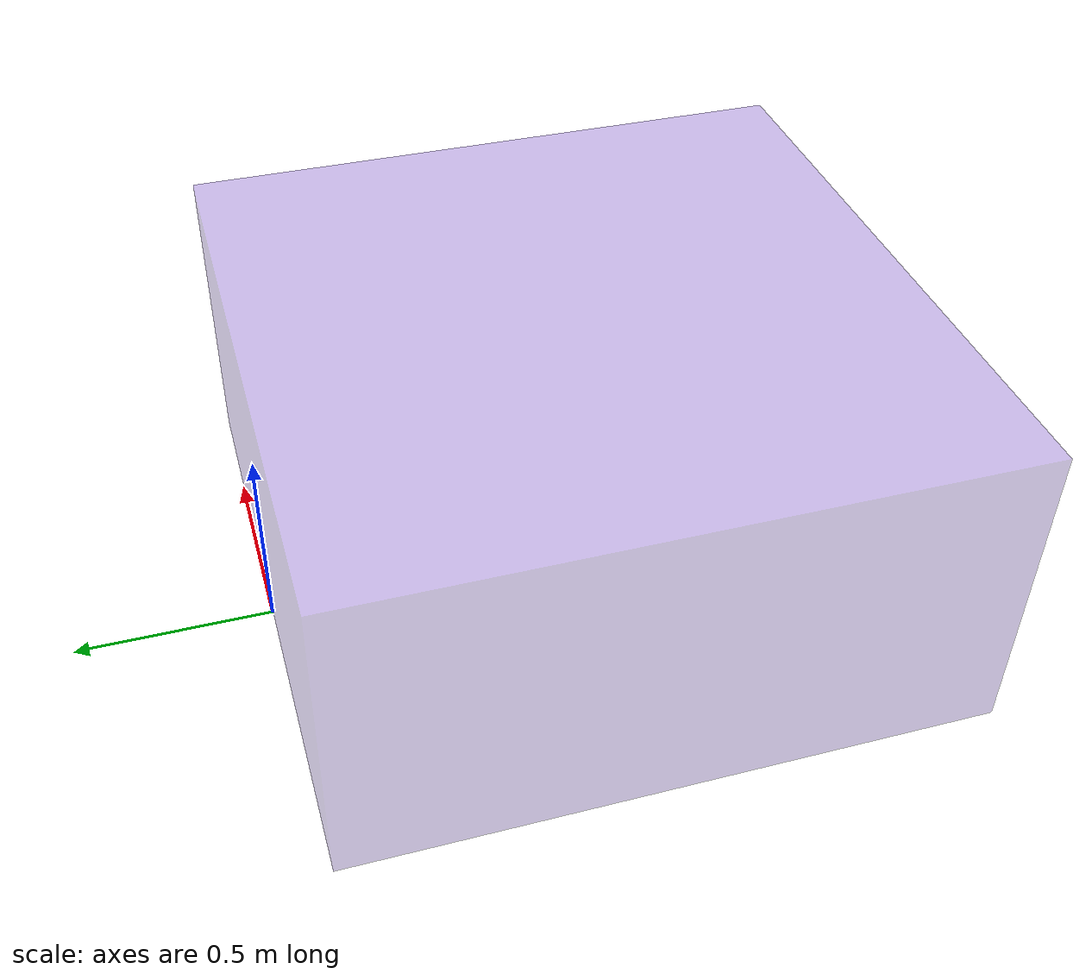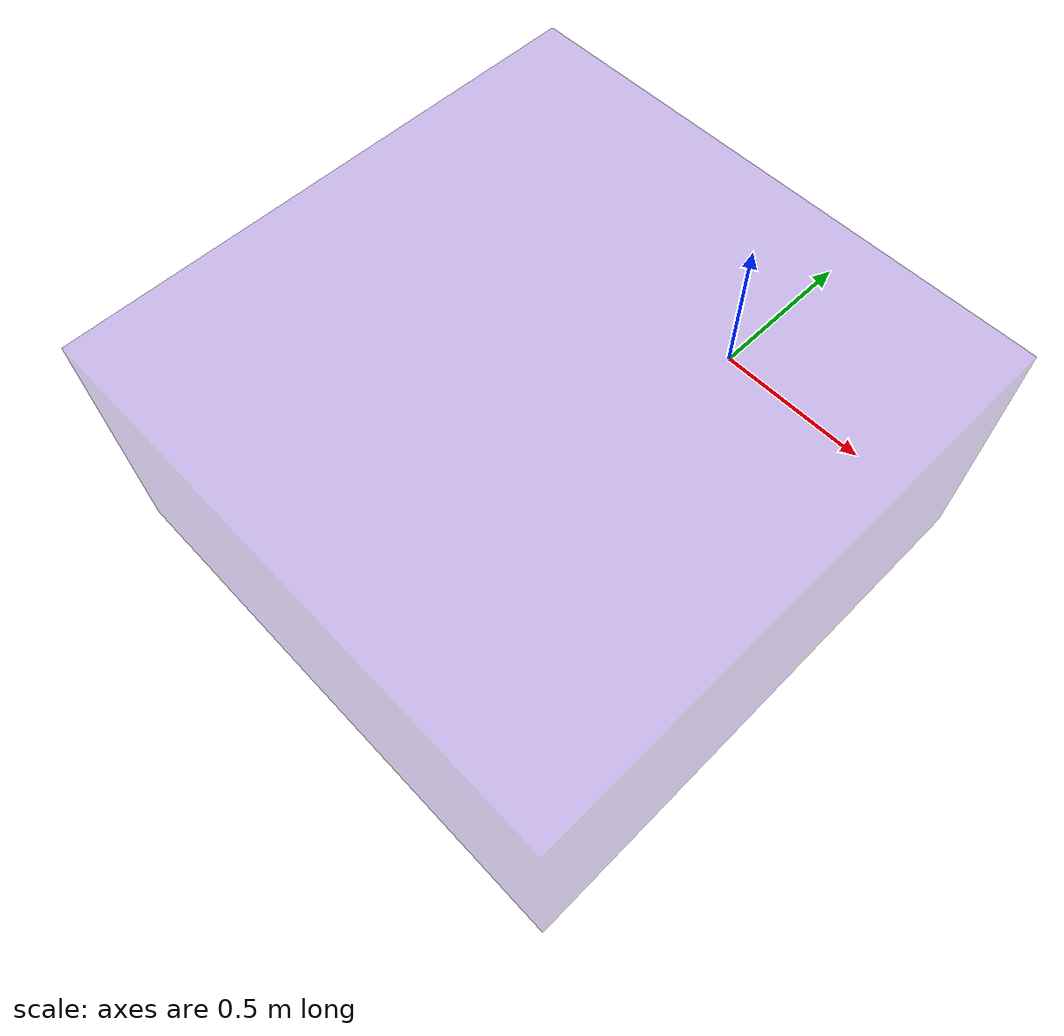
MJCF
<mujoco model="milk">
  <asset>
    <mesh file="meshes/milk.msh" name="milk_mesh" scale="0.9 0.9 0.9"/>
    <texture file="../textures/ceramic.png" name="tex-ceramic" type="2d"/>
    <material name="ceramic" reflectance="0.5" texrepeat="1 1" texture="tex-ceramic" texuniform="true"/>
  </asset>
  <worldbody>
    <body>
      <body name="object" pos="0 0 0.4">
        <geom pos="0 -0.80 0" size="0.8 0.8 0.4" type="box" group="0" name="table_collision" friction="0.05 0.3 0.1" rgba="0.3 0.1 0.7 0.3" condim="3"/>

      </body>
      <site rgba="0 0 0 0" size="0.005" pos="0 0 -0.085" name="bottom_site"/>
      <site rgba="0 0 0 0" size="0.005" pos="0 0 0.075" name="top_site"/>
      <site rgba="0 0 0 0" size="0.005" pos="0.025 0.025 0" name="horizontal_radius_site"/>
    </body>
  </worldbody>
</mujoco>
